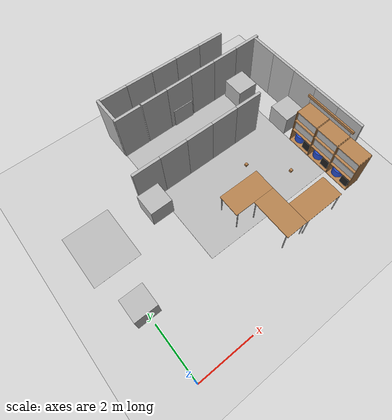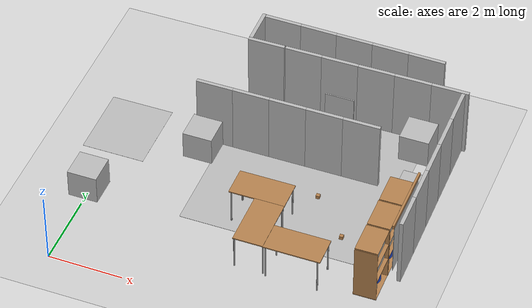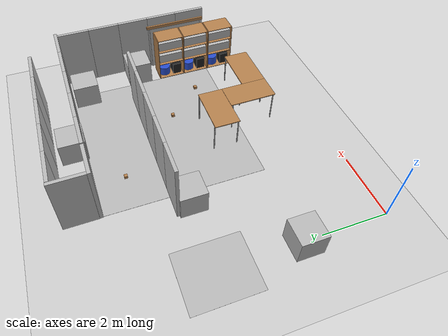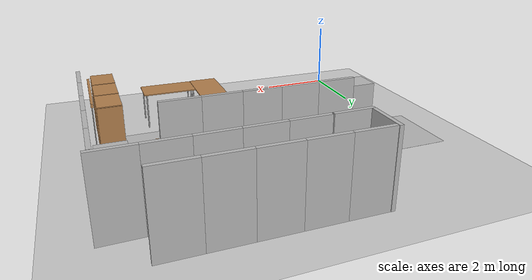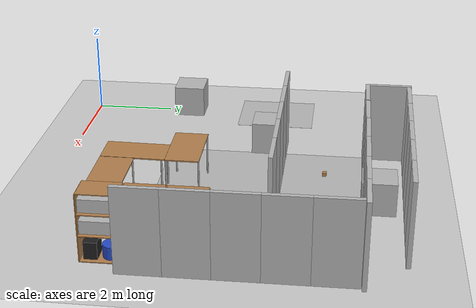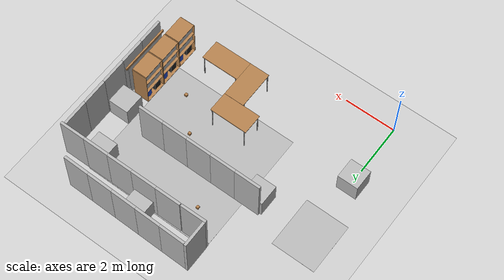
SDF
<sdf version="1.7">
 <world name="default">
  <model name="ground_plane">
   <static>1</static>
   <link name="link">
    <collision name="collision">
     <geometry><plane><normal>0 0 1</normal><size>100 100</size></plane></geometry>
     <surface><friction><ode><mu>100</mu><mu2>50</mu2></ode></friction></surface>
    </collision>
    <visual name="visual">
     <cast_shadows>0</cast_shadows>
     <geometry><plane><normal>0 0 1</normal><size>100 100</size></plane></geometry>
     <material>
      <script><uri>file://media/materials/scripts/gazebo.material</uri><name>Gazebo/Grey</name></script>
     </material>
    </visual>
   </link>
  </model>
  <model name="line_flooring3">
   <link name="link">
    <collision name="collision">
     <geometry><plane><normal>0 0 1</normal><size>5 5</size></plane></geometry>
     <surface><friction><ode><mu>100</mu><mu2>50</mu2></ode></friction></surface>
    </collision>
    <visual name="visual">
     <geometry><plane><normal>0 0 1</normal><size>5 5</size></plane></geometry>
     <material>
      <script>
       <uri>model://env_line_flooring/materials/test_texture.material</uri>
       <name>LineFlooringTexture</name>
      </script>
     </material>
    </visual>
   </link>
   <pose>5 5 0.001 0 -0 3.1415</pose>
   <static>1</static>
  </model>
  <model name="number3">
   <pose>-0.041012 2.59992 0.4 0 -0 0</pose>
   <static>1</static>
   <link name="link">
    <visual name="visual">
     <geometry><mesh><uri>model://number1/meshes/number.dae</uri></mesh></geometry>
     <material>
      <script>
       <uri>model://number3/materials/scripts</uri>
       <uri>model://number3/materials/textures</uri>
       <name>Number/Three</name>
      </script>
     </material>
    </visual>
   </link>
  </model>
  <model name="number6">
   <pose>2.14754 4.96799 0.408307 0 -0 0</pose>
   <static>1</static>
   <link name="link">
    <visual name="visual">
     <geometry><mesh><uri>model://number1/meshes/number.dae</uri></mesh></geometry>
     <material>
      <script>
       <uri>model://number6/materials/scripts</uri>
       <uri>model://number6/materials/textures</uri>
       <name>Number/Six</name>
      </script>
     </material>
    </visual>
   </link>
  </model>
  <model name="number7">
   <pose>7.89852 4.96267 0.4 0 -0 0</pose>
   <static>1</static>
   <link name="link">
    <visual name="visual">
     <geometry><mesh><uri>model://number1/meshes/number.dae</uri></mesh></geometry>
     <material>
      <script>
       <uri>model://number7/materials/scripts</uri>
       <uri>model://number7/materials/textures</uri>
       <name>Number/Seven</name>
      </script>
     </material>
    </visual>
   </link>
  </model>
  <model name="number8">
   <pose>5.04414 7.73475 0.4 0 -0 0</pose>
   <static>1</static>
   <link name="link">
    <visual name="visual">
     <geometry><mesh><uri>model://number1/meshes/number.dae</uri></mesh></geometry>
     <material>
      <script>
       <uri>model://number8/materials/scripts</uri>
       <uri>model://number8/materials/textures</uri>
       <name>Number/Eight</name>
      </script>
     </material>
    </visual>
   </link>
  </model>
  <model name="table">
   <static>1</static>
   <link name="link">
    <collision name="surface">
     <pose>0 0 1 0 -0 0</pose>
     <geometry><box><size>1.5 0.8 0.03</size></box></geometry>
     <surface><friction><ode><mu>0.6</mu><mu2>0.6</mu2></ode></friction></surface>
    </collision>
    <visual name="visual1">
     <pose>0 0 1 0 -0 0</pose>
     <geometry><box><size>1.5 0.8 0.03</size></box></geometry>
     <material>
      <script><uri>file://media/materials/scripts/gazebo.material</uri><name>Gazebo/Wood</name></script>
     </material>
    </visual>
    <collision name="front_left_leg">
     <pose>0.68 0.38 0.5 0 -0 0</pose>
     <geometry><cylinder><radius>0.02</radius><length>1</length></cylinder></geometry>
    </collision>
    <visual name="front_left_leg">
     <pose>0.68 0.38 0.5 0 -0 0</pose>
     <geometry><cylinder><radius>0.02</radius><length>1</length></cylinder></geometry>
     <material>
      <script><uri>file://media/materials/scripts/gazebo.material</uri><name>Gazebo/Grey</name></script>
     </material>
    </visual>
    <collision name="front_right_leg">
     <pose>0.68 -0.38 0.5 0 -0 0</pose>
     <geometry><cylinder><radius>0.02</radius><length>1</length></cylinder></geometry>
    </collision>
    <visual name="front_right_leg">
     <pose>0.68 -0.38 0.5 0 -0 0</pose>
     <geometry><cylinder><radius>0.02</radius><length>1</length></cylinder></geometry>
     <material>
      <script><uri>file://media/materials/scripts/gazebo.material</uri><name>Gazebo/Grey</name></script>
     </material>
    </visual>
    <collision name="back_right_leg">
     <pose>-0.68 -0.38 0.5 0 -0 0</pose>
     <geometry><cylinder><radius>0.02</radius><length>1</length></cylinder></geometry>
    </collision>
    <visual name="back_right_leg">
     <pose>-0.68 -0.38 0.5 0 -0 0</pose>
     <geometry><cylinder><radius>0.02</radius><length>1</length></cylinder></geometry>
     <material>
      <script><uri>file://media/materials/scripts/gazebo.material</uri><name>Gazebo/Grey</name></script>
     </material>
    </visual>
    <collision name="back_left_leg">
     <pose>-0.68 0.38 0.5 0 -0 0</pose>
     <geometry><cylinder><radius>0.02</radius><length>1</length></cylinder></geometry>
    </collision>
    <visual name="back_left_leg">
     <pose>-0.68 0.38 0.5 0 -0 0</pose>
     <geometry><cylinder><radius>0.02</radius><length>1</length></cylinder></geometry>
     <material>
      <script><uri>file://media/materials/scripts/gazebo.material</uri><name>Gazebo/Grey</name></script>
     </material>
    </visual>
   </link>
   <pose>4.81799 2.07912 0.010412 -4.7e-05 -0.009088 -1.56892</pose>
  </model>
  <model name="env_large_room">
   <link name="base">
    <inertial>
     <mass>100</mass>
     <inertia><ixx>33.4</ixx><ixy>0</ixy><ixz>0</ixz><iyy>41.7</iyy><iyz>0</iyz><izz>8.42</izz></inertia>
    </inertial>
    <collision name="collision1">
     <pose>-2 0 0 0 -0 0</pose>
     <geometry><box><size>1 0.1 2</size></box></geometry>
    </collision>
    <collision name="collision2">
     <pose>-1 0 0 0 -0 0</pose>
     <geometry><box><size>1 0.1 2</size></box></geometry>
    </collision>
    <collision name="collision3"><geometry><box><size>1 0.1 2</size></box></geometry></collision>
    <collision name="collision4">
     <pose>1 0 0 0 -0 0</pose>
     <geometry><box><size>1 0.1 2</size></box></geometry>
    </collision>
    <collision name="collision5">
     <pose>2 0 0 0 -0 0</pose>
     <geometry><box><size>1 0.1 2</size></box></geometry>
    </collision>
    <visual name="visual1">
     <pose>-2 0 0 0 -0 0</pose>
     <geometry><box><size>1 0.1 2</size></box></geometry>
     <material>
      <script><uri>model://env_wall/materials/test_texture.material</uri><name>WallTexture01</name></script>
     </material>
    </visual>
    <visual name="visual2">
     <pose>-1 0 0 0 -0 0</pose>
     <geometry><box><size>1 0.1 2</size></box></geometry>
     <material>
      <script><uri>model://env_wall/materials/test_texture.material</uri><name>WallTexture01</name></script>
     </material>
    </visual>
    <visual name="visual3">
     <geometry><box><size>1 0.1 2</size></box></geometry>
     <material>
      <script><uri>model://env_wall/materials/test_texture.material</uri><name>WallTexture01</name></script>
     </material>
    </visual>
    <visual name="visual4">
     <pose>1 0 0 0 -0 0</pose>
     <geometry><box><size>1 0.1 2</size></box></geometry>
     <material>
      <script><uri>model://env_wall/materials/test_texture.material</uri><name>WallTexture01</name></script>
     </material>
    </visual>
    <visual name="visual5">
     <pose>2 0 0 0 -0 0</pose>
     <geometry><box><size>1 0.1 2</size></box></geometry>
     <material>
      <script><uri>model://env_wall/materials/test_texture.material</uri><name>WallTexture01</name></script>
     </material>
    </visual>
   </link>
   <pose>4.32553 5.40128 1.00083 -1.1e-05 -7e-05 0.000279</pose>
  </model>
  <model name="number9">
   <pose>7.38405 6.90361 0.4 0 -0 0</pose>
   <static>1</static>
   <link name="link">
    <visual name="visual">
     <geometry><mesh><uri>model://number1/meshes/number.dae</uri></mesh></geometry>
     <material>
      <script>
       <uri>model://number9/materials/scripts</uri>
       <uri>model://number9/materials/textures</uri>
       <name>Number/Nine</name>
      </script>
     </material>
    </visual>
   </link>
  </model>
  <model name="env_large_room_2">
   <link name="base">
    <inertial>
     <mass>100</mass>
     <inertia><ixx>33.4</ixx><ixy>0</ixy><ixz>0</ixz><iyy>41.7</iyy><iyz>0</iyz><izz>8.42</izz></inertia>
    </inertial>
    <collision name="collision1">
     <pose>-2 0 0 0 -0 0</pose>
     <geometry><box><size>1 0.1 2</size></box></geometry>
    </collision>
    <collision name="collision2">
     <pose>-1 0 0 0 -0 0</pose>
     <geometry><box><size>1 0.1 2</size></box></geometry>
    </collision>
    <collision name="collision3"><geometry><box><size>1 0.1 2</size></box></geometry></collision>
    <collision name="collision4">
     <pose>1 0 0 0 -0 0</pose>
     <geometry><box><size>1 0.1 2</size></box></geometry>
    </collision>
    <collision name="collision5">
     <pose>2 0 0 0 -0 0</pose>
     <geometry><box><size>1 0.1 2</size></box></geometry>
    </collision>
    <visual name="visual1">
     <pose>-2 0 0 0 -0 0</pose>
     <geometry><box><size>1 0.1 2</size></box></geometry>
     <material>
      <script><uri>model://env_wall/materials/test_texture.material</uri><name>WallTexture01</name></script>
     </material>
    </visual>
    <visual name="visual2">
     <pose>-1 0 0 0 -0 0</pose>
     <geometry><box><size>1 0.1 2</size></box></geometry>
     <material>
      <script><uri>model://env_wall/materials/test_texture.material</uri><name>WallTexture01</name></script>
     </material>
    </visual>
    <visual name="visual3">
     <geometry><box><size>1 0.1 2</size></box></geometry>
     <material>
      <script><uri>model://env_wall/materials/test_texture.material</uri><name>WallTexture01</name></script>
     </material>
    </visual>
    <visual name="visual4">
     <pose>1 0 0 0 -0 0</pose>
     <geometry><box><size>1 0.1 2</size></box></geometry>
     <material>
      <script><uri>model://env_wall/materials/test_texture.material</uri><name>WallTexture01</name></script>
     </material>
    </visual>
    <visual name="visual5">
     <pose>2 0 0 0 -0 0</pose>
     <geometry><box><size>1 0.1 2</size></box></geometry>
     <material>
      <script><uri>model://env_wall/materials/test_texture.material</uri><name>WallTexture01</name></script>
     </material>
    </visual>
   </link>
   <pose>8.39484 4.87066 1.00097 2e-06 6.9e-05 -1.56167</pose>
  </model>
  <model name="env_large_room_4">
   <link name="base">
    <inertial>
     <mass>100</mass>
     <inertia><ixx>33.4</ixx><ixy>0</ixy><ixz>0</ixz><iyy>41.7</iyy><iyz>0</iyz><izz>8.42</izz></inertia>
    </inertial>
    <collision name="collision1">
     <pose>-2 0 0 0 -0 0</pose>
     <geometry><box><size>1 0.1 2</size></box></geometry>
    </collision>
    <collision name="collision2">
     <pose>-1 0 0 0 -0 0</pose>
     <geometry><box><size>1 0.1 2</size></box></geometry>
    </collision>
    <collision name="collision3"><geometry><box><size>1 0.1 2</size></box></geometry></collision>
    <collision name="collision4">
     <pose>1 0 0 0 -0 0</pose>
     <geometry><box><size>1 0.1 2</size></box></geometry>
    </collision>
    <collision name="collision5">
     <pose>2 0 0 0 -0 0</pose>
     <geometry><box><size>1 0.1 2</size></box></geometry>
    </collision>
    <visual name="visual1">
     <pose>-2 0 0 0 -0 0</pose>
     <geometry><box><size>1 0.1 2</size></box></geometry>
     <material>
      <script><uri>model://env_wall/materials/test_texture.material</uri><name>WallTexture01</name></script>
     </material>
    </visual>
    <visual name="visual2">
     <pose>-1 0 0 0 -0 0</pose>
     <geometry><box><size>1 0.1 2</size></box></geometry>
     <material>
      <script><uri>model://env_wall/materials/test_texture.material</uri><name>WallTexture01</name></script>
     </material>
    </visual>
    <visual name="visual3">
     <geometry><box><size>1 0.1 2</size></box></geometry>
     <material>
      <script><uri>model://env_wall/materials/test_texture.material</uri><name>WallTexture01</name></script>
     </material>
    </visual>
    <visual name="visual4">
     <pose>1 0 0 0 -0 0</pose>
     <geometry><box><size>1 0.1 2</size></box></geometry>
     <material>
      <script><uri>model://env_wall/materials/test_texture.material</uri><name>WallTexture01</name></script>
     </material>
    </visual>
    <visual name="visual5">
     <pose>2 0 0 0 -0 0</pose>
     <geometry><box><size>1 0.1 2</size></box></geometry>
     <material>
      <script><uri>model://env_wall/materials/test_texture.material</uri><name>WallTexture01</name></script>
     </material>
    </visual>
   </link>
   <pose>6.00786 7.42026 1.00079 7e-06 8.3e-05 0.004255</pose>
  </model>
  <model name="table_0">
   <static>1</static>
   <link name="link">
    <collision name="surface">
     <pose>0 0 1 0 -0 0</pose>
     <geometry><box><size>1.5 0.8 0.03</size></box></geometry>
     <surface><friction><ode><mu>0.6</mu><mu2>0.6</mu2></ode></friction></surface>
    </collision>
    <visual name="visual1">
     <pose>0 0 1 0 -0 0</pose>
     <geometry><box><size>1.5 0.8 0.03</size></box></geometry>
     <material>
      <script><uri>file://media/materials/scripts/gazebo.material</uri><name>Gazebo/Wood</name></script>
     </material>
    </visual>
    <collision name="front_left_leg">
     <pose>0.68 0.38 0.5 0 -0 0</pose>
     <geometry><cylinder><radius>0.02</radius><length>1</length></cylinder></geometry>
    </collision>
    <visual name="front_left_leg">
     <pose>0.68 0.38 0.5 0 -0 0</pose>
     <geometry><cylinder><radius>0.02</radius><length>1</length></cylinder></geometry>
     <material>
      <script><uri>file://media/materials/scripts/gazebo.material</uri><name>Gazebo/Grey</name></script>
     </material>
    </visual>
    <collision name="front_right_leg">
     <pose>0.68 -0.38 0.5 0 -0 0</pose>
     <geometry><cylinder><radius>0.02</radius><length>1</length></cylinder></geometry>
    </collision>
    <visual name="front_right_leg">
     <pose>0.68 -0.38 0.5 0 -0 0</pose>
     <geometry><cylinder><radius>0.02</radius><length>1</length></cylinder></geometry>
     <material>
      <script><uri>file://media/materials/scripts/gazebo.material</uri><name>Gazebo/Grey</name></script>
     </material>
    </visual>
    <collision name="back_right_leg">
     <pose>-0.68 -0.38 0.5 0 -0 0</pose>
     <geometry><cylinder><radius>0.02</radius><length>1</length></cylinder></geometry>
    </collision>
    <visual name="back_right_leg">
     <pose>-0.68 -0.38 0.5 0 -0 0</pose>
     <geometry><cylinder><radius>0.02</radius><length>1</length></cylinder></geometry>
     <material>
      <script><uri>file://media/materials/scripts/gazebo.material</uri><name>Gazebo/Grey</name></script>
     </material>
    </visual>
    <collision name="back_left_leg">
     <pose>-0.68 0.38 0.5 0 -0 0</pose>
     <geometry><cylinder><radius>0.02</radius><length>1</length></cylinder></geometry>
    </collision>
    <visual name="back_left_leg">
     <pose>-0.68 0.38 0.5 0 -0 0</pose>
     <geometry><cylinder><radius>0.02</radius><length>1</length></cylinder></geometry>
     <material>
      <script><uri>file://media/materials/scripts/gazebo.material</uri><name>Gazebo/Grey</name></script>
     </material>
    </visual>
   </link>
   <pose>4.46738 3.23399 0 0 -0 0</pose>
  </model>
  <model name="wood_cube_10cm_0">
   <link name="link">
    <pose>0 0 0.05 0 -0 0</pose>
    <inertial>
     <mass>0.5167</mass>
     <inertia>
      <ixx>0.000861167</ixx>
      <ixy>0</ixy>
      <ixz>0</ixz>
      <iyy>0.000861167</iyy>
      <iyz>0</iyz>
      <izz>0.000861167</izz>
     </inertia>
    </inertial>
    <collision name="collision">
     <geometry><box><size>0.1 0.1 0.1</size></box></geometry>
     <surface>
      <contact>
       <poissons_ratio>0.347</poissons_ratio>
       <elastic_modulus>8.8e+09</elastic_modulus>
       <ode><kp>100000</kp><kd>100</kd><max_vel>100</max_vel><min_depth>0.001</min_depth></ode>
      </contact>
      <friction>
       <torsional>
        <coefficient>1</coefficient>
        <use_patch_radius>0</use_patch_radius>
        <surface_radius>0.01</surface_radius>
       </torsional>
      </friction>
     </surface>
    </collision>
    <visual name="visual">
     <geometry><box><size>0.1 0.1 0.1</size></box></geometry>
     <material>
      <script><uri>file://media/materials/scripts/gazebo.material</uri><name>Gazebo/Wood</name></script>
     </material>
    </visual>
   </link>
   <pose>3.59739 6.45566 -3e-06 -1e-06 -3e-06 -0</pose>
  </model>
  <model name="wood_cube_10cm_1">
   <link name="link">
    <pose>0 0 0.05 0 -0 0</pose>
    <inertial>
     <mass>0.5167</mass>
     <inertia>
      <ixx>0.000861167</ixx>
      <ixy>0</ixy>
      <ixz>0</ixz>
      <iyy>0.000861167</iyy>
      <iyz>0</iyz>
      <izz>0.000861167</izz>
     </inertia>
    </inertial>
    <collision name="collision">
     <geometry><box><size>0.1 0.1 0.1</size></box></geometry>
     <surface>
      <contact>
       <poissons_ratio>0.347</poissons_ratio>
       <elastic_modulus>8.8e+09</elastic_modulus>
       <ode><kp>100000</kp><kd>100</kd><max_vel>100</max_vel><min_depth>0.001</min_depth></ode>
      </contact>
      <friction>
       <torsional>
        <coefficient>1</coefficient>
        <use_patch_radius>0</use_patch_radius>
        <surface_radius>0.01</surface_radius>
       </torsional>
      </friction>
     </surface>
    </collision>
    <visual name="visual">
     <geometry><box><size>0.1 0.1 0.1</size></box></geometry>
     <material>
      <script><uri>file://media/materials/scripts/gazebo.material</uri><name>Gazebo/Wood</name></script>
     </material>
    </visual>
   </link>
   <pose>5.54841 4.39961 -3e-06 3e-06 1e-06 -1.1e-05</pose>
  </model>
  <model name="env_large_room_7">
   <link name="base">
    <inertial>
     <mass>100</mass>
     <inertia><ixx>33.4</ixx><ixy>0</ixy><ixz>0</ixz><iyy>41.7</iyy><iyz>0</iyz><izz>8.42</izz></inertia>
    </inertial>
    <collision name="collision"><geometry><box><size>1 0.1 2</size></box></geometry></collision>
    <visual name="visual">
     <geometry><box><size>1 0.1 2</size></box></geometry>
     <material>
      <script><uri>model://env_wall/materials/test_texture.material</uri><name>WallTexture01</name></script>
     </material>
    </visual>
   </link>
   <pose>2.97729 7.40237 1.00081 7e-06 -0 0.010191</pose>
  </model>
  <model name="table_1">
   <static>1</static>
   <link name="link">
    <collision name="surface">
     <pose>0 0 1 0 -0 0</pose>
     <geometry><box><size>1.5 0.8 0.03</size></box></geometry>
     <surface><friction><ode><mu>0.6</mu><mu2>0.6</mu2></ode></friction></surface>
    </collision>
    <visual name="visual1">
     <pose>0 0 1 0 -0 0</pose>
     <geometry><box><size>1.5 0.8 0.03</size></box></geometry>
     <material>
      <script><uri>file://media/materials/scripts/gazebo.material</uri><name>Gazebo/Wood</name></script>
     </material>
    </visual>
    <collision name="front_left_leg">
     <pose>0.68 0.38 0.5 0 -0 0</pose>
     <geometry><cylinder><radius>0.02</radius><length>1</length></cylinder></geometry>
    </collision>
    <visual name="front_left_leg">
     <pose>0.68 0.38 0.5 0 -0 0</pose>
     <geometry><cylinder><radius>0.02</radius><length>1</length></cylinder></geometry>
     <material>
      <script><uri>file://media/materials/scripts/gazebo.material</uri><name>Gazebo/Grey</name></script>
     </material>
    </visual>
    <collision name="front_right_leg">
     <pose>0.68 -0.38 0.5 0 -0 0</pose>
     <geometry><cylinder><radius>0.02</radius><length>1</length></cylinder></geometry>
    </collision>
    <visual name="front_right_leg">
     <pose>0.68 -0.38 0.5 0 -0 0</pose>
     <geometry><cylinder><radius>0.02</radius><length>1</length></cylinder></geometry>
     <material>
      <script><uri>file://media/materials/scripts/gazebo.material</uri><name>Gazebo/Grey</name></script>
     </material>
    </visual>
    <collision name="back_right_leg">
     <pose>-0.68 -0.38 0.5 0 -0 0</pose>
     <geometry><cylinder><radius>0.02</radius><length>1</length></cylinder></geometry>
    </collision>
    <visual name="back_right_leg">
     <pose>-0.68 -0.38 0.5 0 -0 0</pose>
     <geometry><cylinder><radius>0.02</radius><length>1</length></cylinder></geometry>
     <material>
      <script><uri>file://media/materials/scripts/gazebo.material</uri><name>Gazebo/Grey</name></script>
     </material>
    </visual>
    <collision name="back_left_leg">
     <pose>-0.68 0.38 0.5 0 -0 0</pose>
     <geometry><cylinder><radius>0.02</radius><length>1</length></cylinder></geometry>
    </collision>
    <visual name="back_left_leg">
     <pose>-0.68 0.38 0.5 0 -0 0</pose>
     <geometry><cylinder><radius>0.02</radius><length>1</length></cylinder></geometry>
     <material>
      <script><uri>file://media/materials/scripts/gazebo.material</uri><name>Gazebo/Grey</name></script>
     </material>
    </visual>
   </link>
   <pose>5.96965 1.73408 0.006674 0 -0 0</pose>
  </model>
  <model name="env_wood_shelf_1">
   <link name="base">
    <inertial>
     <pose>0 0 0.8 0 -0 0</pose>
     <mass>100</mass>
     <inertia><ixx>33.4</ixx><ixy>0</ixy><ixz>0</ixz><iyy>41.7</iyy><iyz>0</iyz><izz>8.42</izz></inertia>
    </inertial>
    <collision name="collision_bottom">
     <pose>0 0 0.01 0 -0 0</pose>
     <geometry><box><size>0.6 0.9 0.02</size></box></geometry>
    </collision>
    <visual name="visual_bottom">
     <pose>0 0 0.01 0 -0 0</pose>
     <geometry><box><size>0.6 0.9 0.02</size></box></geometry>
     <material>
      <script><uri>model://env_wood_shelf/materials/test_texture.material</uri><name>WoodTecture1</name></script>
     </material>
    </visual>
    <collision name="collision_middle1">
     <pose>0 0 0.61 0 -0 0</pose>
     <geometry><box><size>0.6 0.86 0.02</size></box></geometry>
    </collision>
    <visual name="visual_middle1">
     <pose>0 0 0.61 0 -0 0</pose>
     <geometry><box><size>0.6 0.86 0.02</size></box></geometry>
     <material>
      <script><uri>model://env_wood_shelf/materials/test_texture.material</uri><name>WoodTecture1</name></script>
     </material>
    </visual>
    <collision name="collision_middle2">
     <pose>0 0 1.11 0 -0 0</pose>
     <geometry><box><size>0.6 0.86 0.02</size></box></geometry>
    </collision>
    <visual name="visual_middle2">
     <pose>0 0 1.11 0 -0 0</pose>
     <geometry><box><size>0.6 0.86 0.02</size></box></geometry>
     <material>
      <script><uri>model://env_wood_shelf/materials/test_texture.material</uri><name>WoodTecture1</name></script>
     </material>
    </visual>
    <collision name="collision_top">
     <pose>0 0 1.59 0 -0 0</pose>
     <geometry><box><size>0.6 0.86 0.02</size></box></geometry>
    </collision>
    <visual name="visual_top">
     <pose>0 0 1.59 0 -0 0</pose>
     <geometry><box><size>0.6 0.86 0.02</size></box></geometry>
     <material>
      <script><uri>model://env_wood_shelf/materials/test_texture.material</uri><name>WoodTecture1</name></script>
     </material>
    </visual>
    <collision name="collision_right">
     <pose>0 0.44 0.8 0 -0 0</pose>
     <geometry><box><size>0.6 0.02 1.56</size></box></geometry>
    </collision>
    <visual name="visual_right">
     <pose>0 0.44 0.8 0 1.5707 0</pose>
     <geometry><box><size>1.56 0.02 0.6</size></box></geometry>
     <material>
      <script><uri>model://env_wood_shelf/materials/test_texture.material</uri><name>WoodTecture1</name></script>
     </material>
    </visual>
    <collision name="collision_left">
     <pose>0 -0.44 0.8 0 -0 0</pose>
     <geometry><box><size>0.6 0.02 1.56</size></box></geometry>
    </collision>
    <visual name="visual_left">
     <pose>0 -0.44 0.8 0 1.5707 0</pose>
     <geometry><box><size>1.56 0.02 0.6</size></box></geometry>
     <material>
      <script><uri>model://env_wood_shelf/materials/test_texture.material</uri><name>WoodTecture1</name></script>
     </material>
    </visual>
    <collision name="collision_box">
     <pose>0 -0.22 0.22 0 -0 0</pose>
     <geometry><box><size>0.4 0.3 0.4</size></box></geometry>
    </collision>
    <visual name="visual_box">
     <pose>0 -0.22 0.22 0 -0 0</pose>
     <geometry><box><size>0.4 0.3 0.4</size></box></geometry>
     <material>
      <script>
       <uri>model://env_wood_shelf/materials/test_texture.material</uri>
       <name>PlasticBlackTexture</name>
      </script>
     </material>
    </visual>
    <collision name="collision_cylinder">
     <pose>0 0.2 0.17 0 -0 0</pose>
     <geometry><cylinder><radius>0.2</radius><length>0.3</length></cylinder></geometry>
    </collision>
    <visual name="visual_cylinder">
     <pose>0 0.2 0.17 0 -0 0</pose>
     <geometry><cylinder><radius>0.2</radius><length>0.3</length></cylinder></geometry>
     <material>
      <script>
       <uri>model://env_wood_shelf/materials/test_texture.material</uri>
       <name>PlasticBlueTexture</name>
      </script>
     </material>
    </visual>
    <collision name="collision_book1">
     <pose>0 0 0.77 0 -0 0</pose>
     <geometry><box><size>0.4 0.86 0.3</size></box></geometry>
    </collision>
    <visual name="visual_books1">
     <pose>0 0 0.77 0 -0 0</pose>
     <geometry><box><size>0.4 0.86 0.3</size></box></geometry>
     <material>
      <script><uri>model://env_wood_shelf/materials/test_texture.material</uri><name>Books1Texture</name></script>
     </material>
    </visual>
    <collision name="collision_book2">
     <pose>0 0 1.27 0 -0 0</pose>
     <geometry><box><size>0.4 0.86 0.3</size></box></geometry>
    </collision>
    <visual name="visual_books2">
     <pose>0 0 1.27 0 -0 0</pose>
     <geometry><box><size>0.4 0.86 0.3</size></box></geometry>
     <material>
      <script><uri>model://env_wood_shelf/materials/test_texture.material</uri><name>Books2Texture</name></script>
     </material>
    </visual>
   </link>
   <pose>7.80627 3.80774 0.00095 -8.4e-05 4e-05 0.010465</pose>
  </model>
  <model name="env_wood_shelf_2">
   <link name="base">
    <inertial>
     <pose>0 0 0.8 0 -0 0</pose>
     <mass>100</mass>
     <inertia><ixx>33.4</ixx><ixy>0</ixy><ixz>0</ixz><iyy>41.7</iyy><iyz>0</iyz><izz>8.42</izz></inertia>
    </inertial>
    <collision name="collision_bottom">
     <pose>0 0 0.01 0 -0 0</pose>
     <geometry><box><size>0.6 0.9 0.02</size></box></geometry>
    </collision>
    <visual name="visual_bottom">
     <pose>0 0 0.01 0 -0 0</pose>
     <geometry><box><size>0.6 0.9 0.02</size></box></geometry>
     <material>
      <script><uri>model://env_wood_shelf/materials/test_texture.material</uri><name>WoodTecture1</name></script>
     </material>
    </visual>
    <collision name="collision_middle1">
     <pose>0 0 0.61 0 -0 0</pose>
     <geometry><box><size>0.6 0.86 0.02</size></box></geometry>
    </collision>
    <visual name="visual_middle1">
     <pose>0 0 0.61 0 -0 0</pose>
     <geometry><box><size>0.6 0.86 0.02</size></box></geometry>
     <material>
      <script><uri>model://env_wood_shelf/materials/test_texture.material</uri><name>WoodTecture1</name></script>
     </material>
    </visual>
    <collision name="collision_middle2">
     <pose>0 0 1.11 0 -0 0</pose>
     <geometry><box><size>0.6 0.86 0.02</size></box></geometry>
    </collision>
    <visual name="visual_middle2">
     <pose>0 0 1.11 0 -0 0</pose>
     <geometry><box><size>0.6 0.86 0.02</size></box></geometry>
     <material>
      <script><uri>model://env_wood_shelf/materials/test_texture.material</uri><name>WoodTecture1</name></script>
     </material>
    </visual>
    <collision name="collision_top">
     <pose>0 0 1.59 0 -0 0</pose>
     <geometry><box><size>0.6 0.86 0.02</size></box></geometry>
    </collision>
    <visual name="visual_top">
     <pose>0 0 1.59 0 -0 0</pose>
     <geometry><box><size>0.6 0.86 0.02</size></box></geometry>
     <material>
      <script><uri>model://env_wood_shelf/materials/test_texture.material</uri><name>WoodTecture1</name></script>
     </material>
    </visual>
    <collision name="collision_right">
     <pose>0 0.44 0.8 0 -0 0</pose>
     <geometry><box><size>0.6 0.02 1.56</size></box></geometry>
    </collision>
    <visual name="visual_right">
     <pose>0 0.44 0.8 0 1.5707 0</pose>
     <geometry><box><size>1.56 0.02 0.6</size></box></geometry>
     <material>
      <script><uri>model://env_wood_shelf/materials/test_texture.material</uri><name>WoodTecture1</name></script>
     </material>
    </visual>
    <collision name="collision_left">
     <pose>0 -0.44 0.8 0 -0 0</pose>
     <geometry><box><size>0.6 0.02 1.56</size></box></geometry>
    </collision>
    <visual name="visual_left">
     <pose>0 -0.44 0.8 0 1.5707 0</pose>
     <geometry><box><size>1.56 0.02 0.6</size></box></geometry>
     <material>
      <script><uri>model://env_wood_shelf/materials/test_texture.material</uri><name>WoodTecture1</name></script>
     </material>
    </visual>
    <collision name="collision_box">
     <pose>0 -0.22 0.22 0 -0 0</pose>
     <geometry><box><size>0.4 0.3 0.4</size></box></geometry>
    </collision>
    <visual name="visual_box">
     <pose>0 -0.22 0.22 0 -0 0</pose>
     <geometry><box><size>0.4 0.3 0.4</size></box></geometry>
     <material>
      <script>
       <uri>model://env_wood_shelf/materials/test_texture.material</uri>
       <name>PlasticBlackTexture</name>
      </script>
     </material>
    </visual>
    <collision name="collision_cylinder">
     <pose>0 0.2 0.17 0 -0 0</pose>
     <geometry><cylinder><radius>0.2</radius><length>0.3</length></cylinder></geometry>
    </collision>
    <visual name="visual_cylinder">
     <pose>0 0.2 0.17 0 -0 0</pose>
     <geometry><cylinder><radius>0.2</radius><length>0.3</length></cylinder></geometry>
     <material>
      <script>
       <uri>model://env_wood_shelf/materials/test_texture.material</uri>
       <name>PlasticBlueTexture</name>
      </script>
     </material>
    </visual>
    <collision name="collision_book1">
     <pose>0 0 0.77 0 -0 0</pose>
     <geometry><box><size>0.4 0.86 0.3</size></box></geometry>
    </collision>
    <visual name="visual_books1">
     <pose>0 0 0.77 0 -0 0</pose>
     <geometry><box><size>0.4 0.86 0.3</size></box></geometry>
     <material>
      <script><uri>model://env_wood_shelf/materials/test_texture.material</uri><name>Books1Texture</name></script>
     </material>
    </visual>
    <collision name="collision_book2">
     <pose>0 0 1.27 0 -0 0</pose>
     <geometry><box><size>0.4 0.86 0.3</size></box></geometry>
    </collision>
    <visual name="visual_books2">
     <pose>0 0 1.27 0 -0 0</pose>
     <geometry><box><size>0.4 0.86 0.3</size></box></geometry>
     <material>
      <script><uri>model://env_wood_shelf/materials/test_texture.material</uri><name>Books2Texture</name></script>
     </material>
    </visual>
   </link>
   <pose>7.80809 2.90767 0.00095 -8.4e-05 4e-05 0.010396</pose>
  </model>
  <model name="env_wood_shelf_3">
   <link name="base">
    <inertial>
     <pose>0 0 0.8 0 -0 0</pose>
     <mass>100</mass>
     <inertia><ixx>33.4</ixx><ixy>0</ixy><ixz>0</ixz><iyy>41.7</iyy><iyz>0</iyz><izz>8.42</izz></inertia>
    </inertial>
    <collision name="collision_bottom">
     <pose>0 0 0.01 0 -0 0</pose>
     <geometry><box><size>0.6 0.9 0.02</size></box></geometry>
    </collision>
    <visual name="visual_bottom">
     <pose>0 0 0.01 0 -0 0</pose>
     <geometry><box><size>0.6 0.9 0.02</size></box></geometry>
     <material>
      <script><uri>model://env_wood_shelf/materials/test_texture.material</uri><name>WoodTecture1</name></script>
     </material>
    </visual>
    <collision name="collision_middle1">
     <pose>0 0 0.61 0 -0 0</pose>
     <geometry><box><size>0.6 0.86 0.02</size></box></geometry>
    </collision>
    <visual name="visual_middle1">
     <pose>0 0 0.61 0 -0 0</pose>
     <geometry><box><size>0.6 0.86 0.02</size></box></geometry>
     <material>
      <script><uri>model://env_wood_shelf/materials/test_texture.material</uri><name>WoodTecture1</name></script>
     </material>
    </visual>
    <collision name="collision_middle2">
     <pose>0 0 1.11 0 -0 0</pose>
     <geometry><box><size>0.6 0.86 0.02</size></box></geometry>
    </collision>
    <visual name="visual_middle2">
     <pose>0 0 1.11 0 -0 0</pose>
     <geometry><box><size>0.6 0.86 0.02</size></box></geometry>
     <material>
      <script><uri>model://env_wood_shelf/materials/test_texture.material</uri><name>WoodTecture1</name></script>
     </material>
    </visual>
    <collision name="collision_top">
     <pose>0 0 1.59 0 -0 0</pose>
     <geometry><box><size>0.6 0.86 0.02</size></box></geometry>
    </collision>
    <visual name="visual_top">
     <pose>0 0 1.59 0 -0 0</pose>
     <geometry><box><size>0.6 0.86 0.02</size></box></geometry>
     <material>
      <script><uri>model://env_wood_shelf/materials/test_texture.material</uri><name>WoodTecture1</name></script>
     </material>
    </visual>
    <collision name="collision_right">
     <pose>0 0.44 0.8 0 -0 0</pose>
     <geometry><box><size>0.6 0.02 1.56</size></box></geometry>
    </collision>
    <visual name="visual_right">
     <pose>0 0.44 0.8 0 1.5707 0</pose>
     <geometry><box><size>1.56 0.02 0.6</size></box></geometry>
     <material>
      <script><uri>model://env_wood_shelf/materials/test_texture.material</uri><name>WoodTecture1</name></script>
     </material>
    </visual>
    <collision name="collision_left">
     <pose>0 -0.44 0.8 0 -0 0</pose>
     <geometry><box><size>0.6 0.02 1.56</size></box></geometry>
    </collision>
    <visual name="visual_left">
     <pose>0 -0.44 0.8 0 1.5707 0</pose>
     <geometry><box><size>1.56 0.02 0.6</size></box></geometry>
     <material>
      <script><uri>model://env_wood_shelf/materials/test_texture.material</uri><name>WoodTecture1</name></script>
     </material>
    </visual>
    <collision name="collision_box">
     <pose>0 -0.22 0.22 0 -0 0</pose>
     <geometry><box><size>0.4 0.3 0.4</size></box></geometry>
    </collision>
    <visual name="visual_box">
     <pose>0 -0.22 0.22 0 -0 0</pose>
     <geometry><box><size>0.4 0.3 0.4</size></box></geometry>
     <material>
      <script>
       <uri>model://env_wood_shelf/materials/test_texture.material</uri>
       <name>PlasticBlackTexture</name>
      </script>
     </material>
    </visual>
    <collision name="collision_cylinder">
     <pose>0 0.2 0.17 0 -0 0</pose>
     <geometry><cylinder><radius>0.2</radius><length>0.3</length></cylinder></geometry>
    </collision>
    <visual name="visual_cylinder">
     <pose>0 0.2 0.17 0 -0 0</pose>
     <geometry><cylinder><radius>0.2</radius><length>0.3</length></cylinder></geometry>
     <material>
      <script>
       <uri>model://env_wood_shelf/materials/test_texture.material</uri>
       <name>PlasticBlueTexture</name>
      </script>
     </material>
    </visual>
    <collision name="collision_book1">
     <pose>0 0 0.77 0 -0 0</pose>
     <geometry><box><size>0.4 0.86 0.3</size></box></geometry>
    </collision>
    <visual name="visual_books1">
     <pose>0 0 0.77 0 -0 0</pose>
     <geometry><box><size>0.4 0.86 0.3</size></box></geometry>
     <material>
      <script><uri>model://env_wood_shelf/materials/test_texture.material</uri><name>Books1Texture</name></script>
     </material>
    </visual>
    <collision name="collision_book2">
     <pose>0 0 1.27 0 -0 0</pose>
     <geometry><box><size>0.4 0.86 0.3</size></box></geometry>
    </collision>
    <visual name="visual_books2">
     <pose>0 0 1.27 0 -0 0</pose>
     <geometry><box><size>0.4 0.86 0.3</size></box></geometry>
     <material>
      <script><uri>model://env_wood_shelf/materials/test_texture.material</uri><name>Books2Texture</name></script>
     </material>
    </visual>
   </link>
   <pose>7.81145 2.00493 0.00095 8.4e-05 -4e-05 0.010153</pose>
  </model>
  <model name="env_curtain_1">
   <static>1</static>
   <link name="link">
    <collision name="collision">
     <geometry><box><size>0.01 1.8 1.6</size></box></geometry>
     <surface><friction><ode><mu>100</mu><mu2>50</mu2></ode></friction></surface>
    </collision>
    <visual name="visual">
     <cast_shadows>0</cast_shadows>
     <geometry><box><size>0.01 1.8 1.6</size></box></geometry>
     <material>
      <script><uri>model://env_curtain/materials/test_texture.material</uri><name>CurtainTexture</name></script>
     </material>
    </visual>
    <visual name="visual_top">
     <pose>0 0 0.83 0 -0 0</pose>
     <cast_shadows>0</cast_shadows>
     <geometry><box><size>0.06 2 0.1</size></box></geometry>
     <material>
      <script><uri>model://env_curtain/materials/test_texture.material</uri><name>WoodTecture1</name></script>
     </material>
    </visual>
   </link>
   <pose>8.18991 3.44509 0.907724 0 -0 0</pose>
  </model>
  <model name="env_harvestx">
   <static>1</static>
   <link name="link">
    <visual name="visual">
     <geometry><plane><normal>0 0 1</normal><size>2 1.7</size></plane></geometry>
     <material>
      <script><uri>model://env_harvestx/materials/test_texture.material</uri><name>HarvestXTexture</name></script>
     </material>
    </visual>
   </link>
   <pose>0 5 0.001 0 0 -1.57</pose>
  </model>
  <model name="wood_cube_10cm_1_clone">
   <link name="link">
    <pose>0 0 0.05 0 -0 0</pose>
    <inertial>
     <mass>0.5167</mass>
     <inertia>
      <ixx>0.000861167</ixx>
      <ixy>0</ixy>
      <ixz>0</ixz>
      <iyy>0.000861167</iyy>
      <iyz>0</iyz>
      <izz>0.000861167</izz>
     </inertia>
    </inertial>
    <collision name="collision">
     <geometry><box><size>0.1 0.1 0.1</size></box></geometry>
     <surface>
      <contact>
       <poissons_ratio>0.347</poissons_ratio>
       <elastic_modulus>8.8e+09</elastic_modulus>
       <ode><kp>100000</kp><kd>100</kd><max_vel>100</max_vel><min_depth>0.001</min_depth></ode>
      </contact>
      <friction>
       <torsional>
        <coefficient>1</coefficient>
        <use_patch_radius>0</use_patch_radius>
        <surface_radius>0.01</surface_radius>
       </torsional>
      </friction>
     </surface>
    </collision>
    <visual name="visual">
     <geometry><box><size>0.1 0.1 0.1</size></box></geometry>
     <material>
      <script><uri>file://media/materials/scripts/gazebo.material</uri><name>Gazebo/Wood</name></script>
     </material>
    </visual>
   </link>
   <pose>6.60074 3.25078 -3e-06 -3e-06 1e-06 -1.1e-05</pose>
  </model>
  <model name="env_large_room_7_clone_clone">
   <link name="base">
    <inertial>
     <mass>100</mass>
     <inertia><ixx>33.4</ixx><ixy>0</ixy><ixz>0</ixz><iyy>41.7</iyy><iyz>0</iyz><izz>8.42</izz></inertia>
    </inertial>
    <collision name="collision"><geometry><box><size>1 0.1 2</size></box></geometry></collision>
    <visual name="visual">
     <geometry><box><size>1 0.1 2</size></box></geometry>
     <material>
      <script><uri>model://env_wall/materials/test_texture.material</uri><name>WallTexture01</name></script>
     </material>
    </visual>
   </link>
   <pose>2.51596 7.94918 1.00081 7e-06 -0 1.57825</pose>
  </model>
  <model name="env_large_room_6_clone_0">
   <link name="base">
    <inertial>
     <mass>100</mass>
     <inertia><ixx>33.4</ixx><ixy>0</ixy><ixz>0</ixz><iyy>41.7</iyy><iyz>0</iyz><izz>8.42</izz></inertia>
    </inertial>
    <collision name="collision1">
     <pose>-2 0 0 0 -0 0</pose>
     <geometry><box><size>1 0.1 2</size></box></geometry>
    </collision>
    <collision name="collision2">
     <pose>-1 0 0 0 -0 0</pose>
     <geometry><box><size>1 0.1 2</size></box></geometry>
    </collision>
    <collision name="collision3"><geometry><box><size>1 0.1 2</size></box></geometry></collision>
    <collision name="collision4">
     <pose>1 0 0 0 -0 0</pose>
     <geometry><box><size>1 0.1 2</size></box></geometry>
    </collision>
    <collision name="collision5">
     <pose>2 0 0 0 -0 0</pose>
     <geometry><box><size>1 0.1 2</size></box></geometry>
    </collision>
    <visual name="visual1">
     <pose>-2 0 0 0 -0 0</pose>
     <geometry><box><size>1 0.1 2</size></box></geometry>
     <material>
      <script><uri>model://env_wall/materials/test_texture.material</uri><name>WallTexture01</name></script>
     </material>
    </visual>
    <visual name="visual2">
     <pose>-1 0 0 0 -0 0</pose>
     <geometry><box><size>1 0.1 2</size></box></geometry>
     <material>
      <script><uri>model://env_wall/materials/test_texture.material</uri><name>WallTexture01</name></script>
     </material>
    </visual>
    <visual name="visual3">
     <geometry><box><size>1 0.1 2</size></box></geometry>
     <material>
      <script><uri>model://env_wall/materials/test_texture.material</uri><name>WallTexture01</name></script>
     </material>
    </visual>
    <visual name="visual4">
     <pose>1 0 0 0 -0 0</pose>
     <geometry><box><size>1 0.1 2</size></box></geometry>
     <material>
      <script><uri>model://env_wall/materials/test_texture.material</uri><name>WallTexture01</name></script>
     </material>
    </visual>
    <visual name="visual5">
     <pose>2 0 0 0 -0 0</pose>
     <geometry><box><size>1 0.1 2</size></box></geometry>
     <material>
      <script><uri>model://env_wall/materials/test_texture.material</uri><name>WallTexture01</name></script>
     </material>
    </visual>
   </link>
   <pose>5.07036 8.35938 1.00083 -2e-06 7e-05 -0.012878</pose>
  </model>
 </world>
</sdf>
